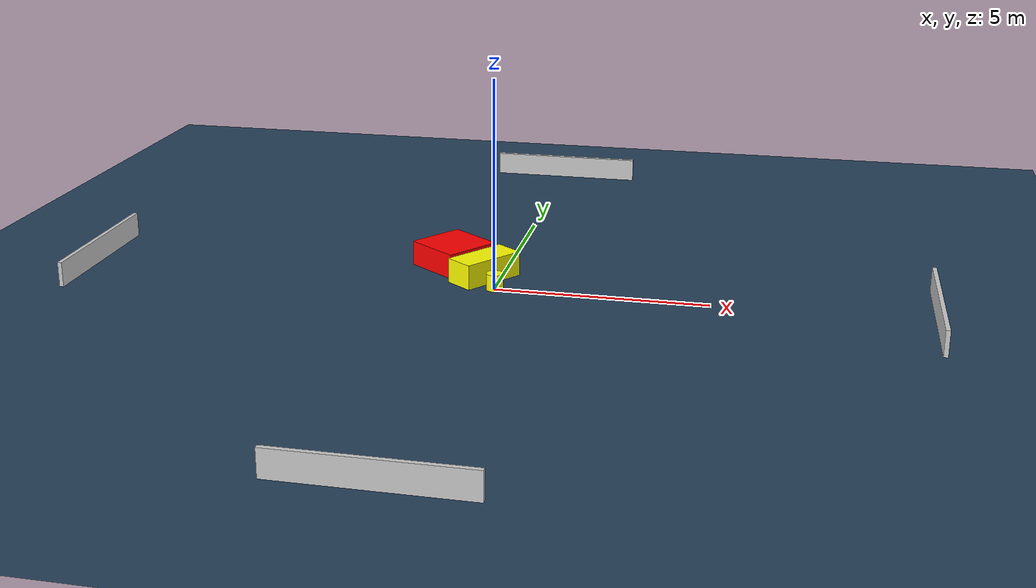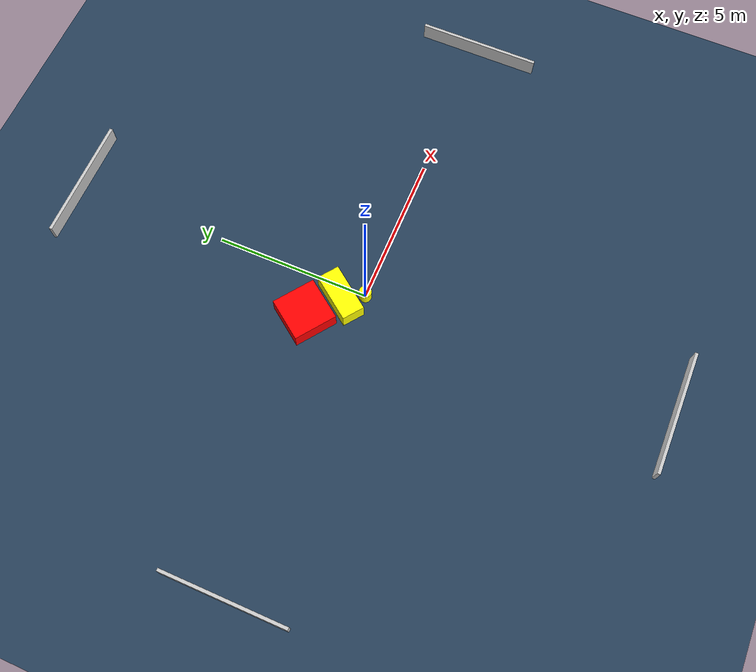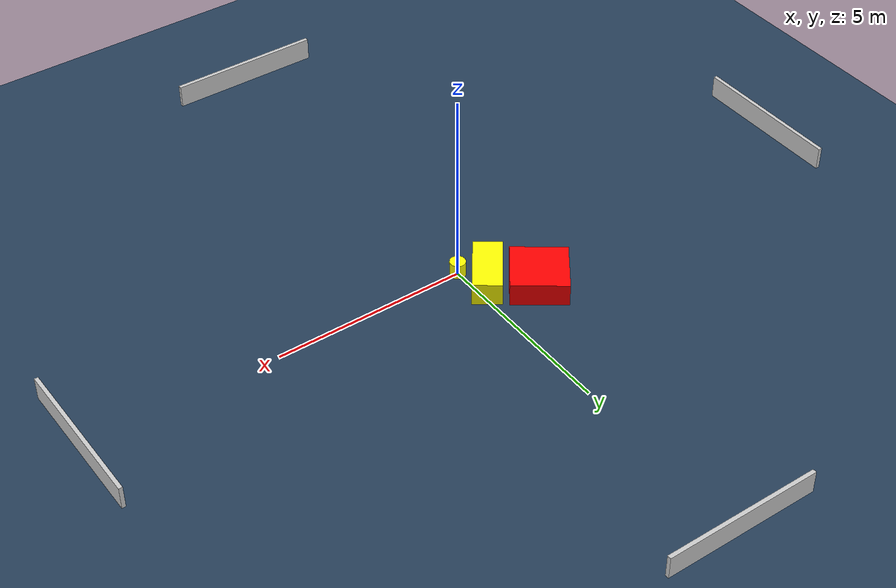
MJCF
<?xml version="1.0" ?>
<mujoco model="generated_environment">
  <option timestep="0.01" integrator="RK4" cone="elliptic"/>
  <default>
    <geom density="1"/>
  </default>
  <asset>
    <texture builtin="gradient" height="3072" name="skybox" rgb1="0.3 0.5 0.7" rgb2="0 0 0" type="skybox" width="512"/>
    <texture builtin="checker" height="300" name="groundplane" rgb1="0.2 0.3 0.4" rgb2="0.1 0.2 0.3" type="2d" width="300"/>
    <material name="groundplane" reflectance="0.2" texrepeat="5 5" texture="groundplane"/>
  </asset>
  <worldbody>
    <light dir="0 0 -1" directional="true" pos="0 0 1.5"/>
    <geom condim="3" friction="0.5 0.005 0.001" material="groundplane" name="floor" pos="0 0 0" size="0 0 0.05" type="plane"/>
    <body name="walls">
      <geom name="wall_1" condim="4" pos="-10.0 0.0 0.3" rgba="0.800000011920929 0.800000011920929 0.800000011920929 1.0" size="0.05 2.0 0.3" type="box"/>
      <geom name="wall_2" condim="4" pos="10.0 0.0 0.3" rgba="0.800000011920929 0.800000011920929 0.800000011920929 1.0" size="0.05 2.0 0.3" type="box"/>
      <geom name="wall_3" condim="4" pos="0.0 -10.0 0.3" rgba="0.800000011920929 0.800000011920929 0.800000011920929 1.0" size="2.0 0.05 0.3" type="box"/>
      <geom name="wall_4" condim="4" pos="0.0 10.0 0.3" rgba="0.800000011920929 0.800000011920929 0.800000011920929 1.0" size="2.0 0.05 0.3" type="box"/>
    </body>
    <body name="robot">
      <joint name="joint_x" type="slide" pos="0 0 0" axis="1 0 0"/>
      <joint name="joint_y" type="slide" pos="0 0 0" axis="0 1 0"/>
      <geom name="robot" type="cylinder" pos="0.0 0.0 0.2" size="0.2 0.2 0.0" mass="5.0" friction="1.0 0.005 0.0001" condim="4" rgba="1.0 1.0 0.0 1.0"/>
    </body>
    <body name="obstacle_1_movable">
      <geom name="obstacle_1_movable" condim="4" pos="-0.39766455623584096 0.661697169544047 0.3" euler="0 0 233.3261833127941" friction="0.0 0.005 0.001" rgba="1.0 1.0 0.0 1.0" size="0.797617434226852 0.3652177754018363 0.3" type="box" mass="0.1"/>
      <joint type="free"/>
    </body>
    <body name="obstacle_2_static">
      <geom name="obstacle_2_static" condim="4" pos="-1.3363454285604959 1.4629163380210601 0.3" euler="0 0 143.76499157166762" friction="0.0 0.005 0.001" rgba="1.0 0.0 0.0 1.0" size="0.7105648262229207 0.7106021733899335 0.3" type="box"/>
    </body>
  </worldbody>
  <actuator>
    <motor name="actuator_x" joint="joint_x" gear="1" ctrlrange="-1 1"/>
    <motor name="actuator_y" joint="joint_y" gear="1" ctrlrange="-1 1"/>
  </actuator>
</mujoco>
